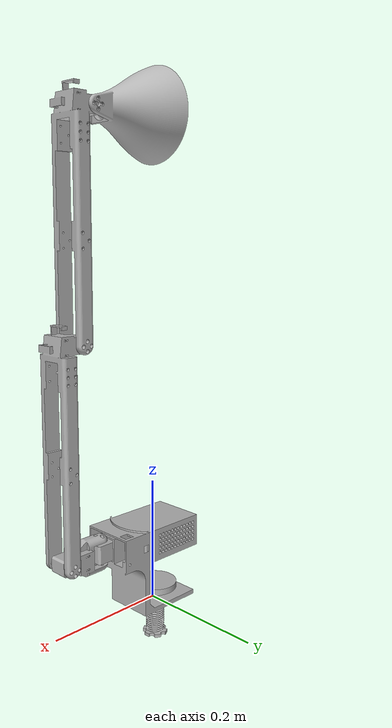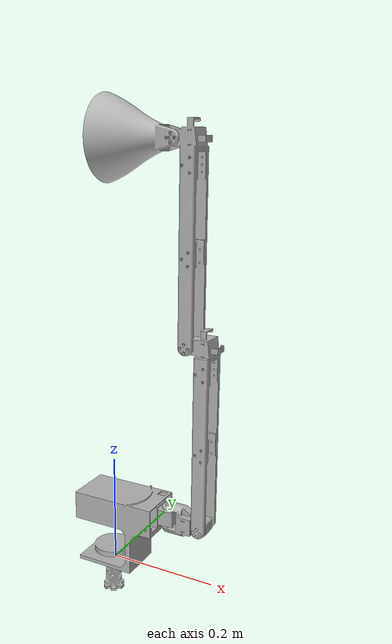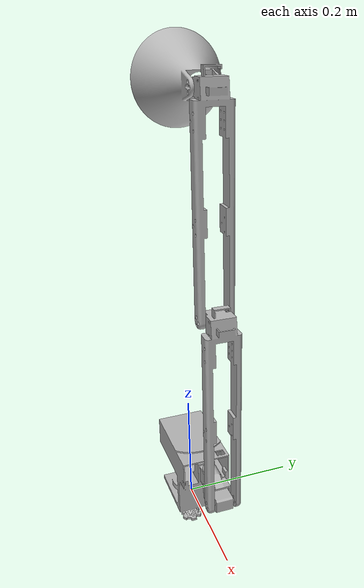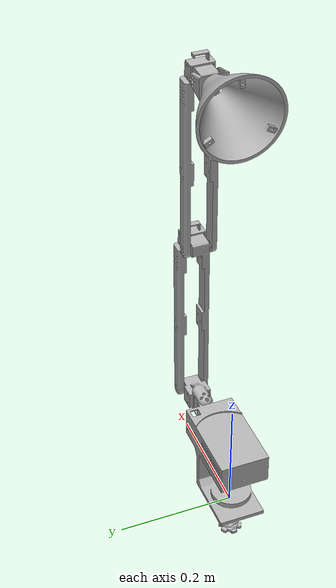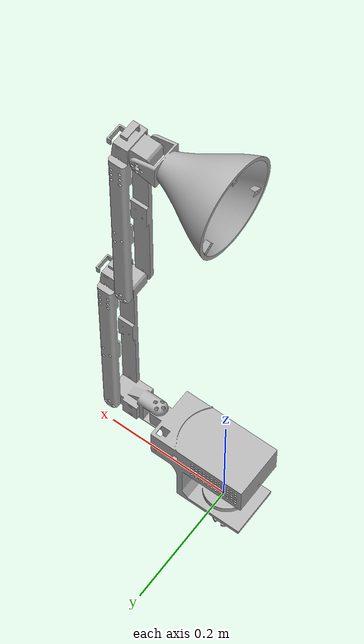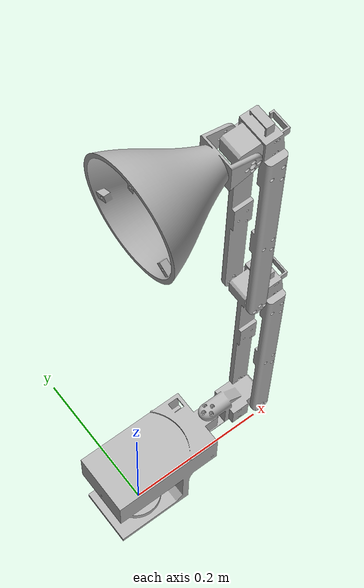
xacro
<?xml version="1.0" ?>
<robot name="Bras" xmlns:xacro="http://www.ros.org/wiki/xacro">

<xacro:include filename="ros/Bras_description/urdf/materials.xacro" />
<xacro:include filename="ros/Bras_description/urdf/Bras.trans" />
<xacro:include filename="ros/Bras_description/urdf/Bras.gazebo" />
<link name="base_link">
  <inertial>
    <origin xyz="0.050158918556482295 -0.0002191740013192163 0.07950424609411824" rpy="0 0 0"/>
    <mass value="0.6653539960614809"/>
    <inertia ixx="0.001908" iyy="0.003516" izz="0.002088" ixy="-6e-06" iyz="5e-06" ixz="-0.000887"/>
  </inertial>
  <visual>
    <origin xyz="0 0 0" rpy="0 0 0"/>
    <geometry>
      <mesh filename="ros/Bras_description/meshes/base_link.stl" scale="0.001 0.001 0.001"/>
    </geometry>
    <material name="silver"/>
  </visual>
  <collision>
    <origin xyz="0 0 0" rpy="0 0 0"/>
    <geometry>
      <mesh filename="ros/Bras_description/meshes/base_link.stl" scale="0.001 0.001 0.001"/>
    </geometry>
  </collision>
</link>

<link name="Bras_1">
  <inertial>
    <origin xyz="-0.009595668756159886 -2.951419174577704e-05 0.26276181202014853" rpy="0 0 0"/>
    <mass value="0.4330005103518874"/>
    <inertia ixx="0.004182" iyy="0.004157" izz="0.000187" ixy="0.0" iyz="0.0" ixz="0.000254"/>
  </inertial>
  <visual>
    <origin xyz="-0.182398 0.001091 -0.113752" rpy="0 0 0"/>
    <geometry>
      <mesh filename="ros/Bras_description/meshes/Bras_1.stl" scale="0.001 0.001 0.001"/>
    </geometry>
    <material name="silver"/>
  </visual>
  <collision>
    <origin xyz="-0.182398 0.001091 -0.113752" rpy="0 0 0"/>
    <geometry>
      <mesh filename="ros/Bras_description/meshes/Bras_1.stl" scale="0.001 0.001 0.001"/>
    </geometry>
  </collision>
</link>

<link name="Bras_2">
  <inertial>
    <origin xyz="-0.009595237669895479 -2.9514191745908663e-05 0.2627623120309766" rpy="0 0 0"/>
    <mass value="0.4330005103518874"/>
    <inertia ixx="0.004182" iyy="0.004157" izz="0.000187" ixy="0.0" iyz="0.0" ixz="0.000254"/>
  </inertial>
  <visual>
    <origin xyz="-0.153428 0.001091 -0.437895" rpy="0 0 0"/>
    <geometry>
      <mesh filename="ros/Bras_description/meshes/Bras_2.stl" scale="0.001 0.001 0.001"/>
    </geometry>
    <material name="silver"/>
  </visual>
  <collision>
    <origin xyz="-0.153428 0.001091 -0.437895" rpy="0 0 0"/>
    <geometry>
      <mesh filename="ros/Bras_description/meshes/Bras_2.stl" scale="0.001 0.001 0.001"/>
    </geometry>
  </collision>
</link>

<link name="Cone_1">
  <inertial>
    <origin xyz="-0.08215488302803256 -5.895168579244433e-06 -8.066010826590642e-06" rpy="0 0 0"/>
    <mass value="0.15450970345685294"/>
    <inertia ixx="0.000366" iyy="0.000339" izz="0.000342" ixy="-0.0" iyz="-0.0" ixz="-0.0"/>
  </inertial>
  <visual>
    <origin xyz="-0.124458 0.001091 -0.762039" rpy="0 0 0"/>
    <geometry>
      <mesh filename="ros/Bras_description/meshes/Cone_1.stl" scale="0.001 0.001 0.001"/>
    </geometry>
    <material name="silver"/>
  </visual>
  <collision>
    <origin xyz="-0.124458 0.001091 -0.762039" rpy="0 0 0"/>
    <geometry>
      <mesh filename="ros/Bras_description/meshes/Cone_1.stl" scale="0.001 0.001 0.001"/>
    </geometry>
  </collision>
</link>

<link name="BrasHorizontal_1">
  <inertial>
    <origin xyz="0.038916156548501515 -0.0006081419331074439 1.9674439080380468e-05" rpy="0 0 0"/>
    <mass value="0.5658819361922761"/>
    <inertia ixx="0.000151" iyy="0.000333" izz="0.000273" ixy="4e-06" iyz="0.0" ixz="-0.0"/>
  </inertial>
  <visual>
    <origin xyz="-0.11439 0.000157 -0.113558" rpy="0 0 0"/>
    <geometry>
      <mesh filename="ros/Bras_description/meshes/BrasHorizontal_1.stl" scale="0.001 0.001 0.001"/>
    </geometry>
    <material name="silver"/>
  </visual>
  <collision>
    <origin xyz="-0.11439 0.000157 -0.113558" rpy="0 0 0"/>
    <geometry>
      <mesh filename="ros/Bras_description/meshes/BrasHorizontal_1.stl" scale="0.001 0.001 0.001"/>
    </geometry>
  </collision>
</link>

<joint name="Revolution 1" type="revolute">
  <origin xyz="0.068008 -0.000934 0.000194" rpy="0 0 0"/>
  <parent link="BrasHorizontal_1"/>
  <child link="Bras_1"/>
  <axis xyz="-0.0 1.0 0.0"/>
  <limit upper="1.570796" lower="0.0" effort="100" velocity="100"/>
</joint>

<joint name="Revolution 2" type="revolute">
  <origin xyz="-0.02897 0.0 0.324143" rpy="0 0 0"/>
  <parent link="Bras_1"/>
  <child link="Bras_2"/>
  <axis xyz="0.0 -1.0 -0.0"/>
  <limit upper="1.570796" lower="0.0" effort="100" velocity="100"/>
</joint>

<joint name="Revolution 3" type="revolute">
  <origin xyz="-0.02897 0.0 0.324144" rpy="0 0 0"/>
  <parent link="Bras_2"/>
  <child link="Cone_1"/>
  <axis xyz="-0.0 1.0 0.0"/>
  <limit upper="1.047198" lower="-1.047198" effort="100" velocity="100"/>
</joint>

<joint name="Revolution 4" type="revolute">
  <origin xyz="0.11439 -0.000157 0.113558" rpy="0 0 0"/>
  <parent link="base_link"/>
  <child link="BrasHorizontal_1"/>
  <axis xyz="-0.0 -0.0 1.0"/>
  <limit upper="1.396263" lower="-1.396263" effort="100" velocity="100"/>
</joint>

</robot>

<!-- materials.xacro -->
<robot name="Bras" xmlns:xacro="http://www.ros.org/wiki/xacro" >

<material name="silver">
  <color rgba="0.700 0.700 0.700 1.000"/>
</material>

</robot>

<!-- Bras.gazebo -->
<robot name="Bras" xmlns:xacro="http://www.ros.org/wiki/xacro" >

<xacro:property name="body_color" value="Gazebo/Silver" />

<gazebo>
  <plugin name="control" filename="libgazebo_ros_control.so"/>
</gazebo>
<gazebo reference="base_link">
  <material>${body_color}</material>
  <mu1>0.2</mu1>
  <mu2>0.2</mu2>
  <selfCollide>true</selfCollide>
  <gravity>true</gravity>
</gazebo>

<gazebo reference="Bras_1">
  <material>${body_color}</material>
  <mu1>0.2</mu1>
  <mu2>0.2</mu2>
  <selfCollide>true</selfCollide>
</gazebo>

<gazebo reference="Bras_2">
  <material>${body_color}</material>
  <mu1>0.2</mu1>
  <mu2>0.2</mu2>
  <selfCollide>true</selfCollide>
</gazebo>

<gazebo reference="Cone_1">
  <material>${body_color}</material>
  <mu1>0.2</mu1>
  <mu2>0.2</mu2>
  <selfCollide>true</selfCollide>
</gazebo>

<gazebo reference="BrasHorizontal_1">
  <material>${body_color}</material>
  <mu1>0.2</mu1>
  <mu2>0.2</mu2>
  <selfCollide>true</selfCollide>
</gazebo>

</robot>
